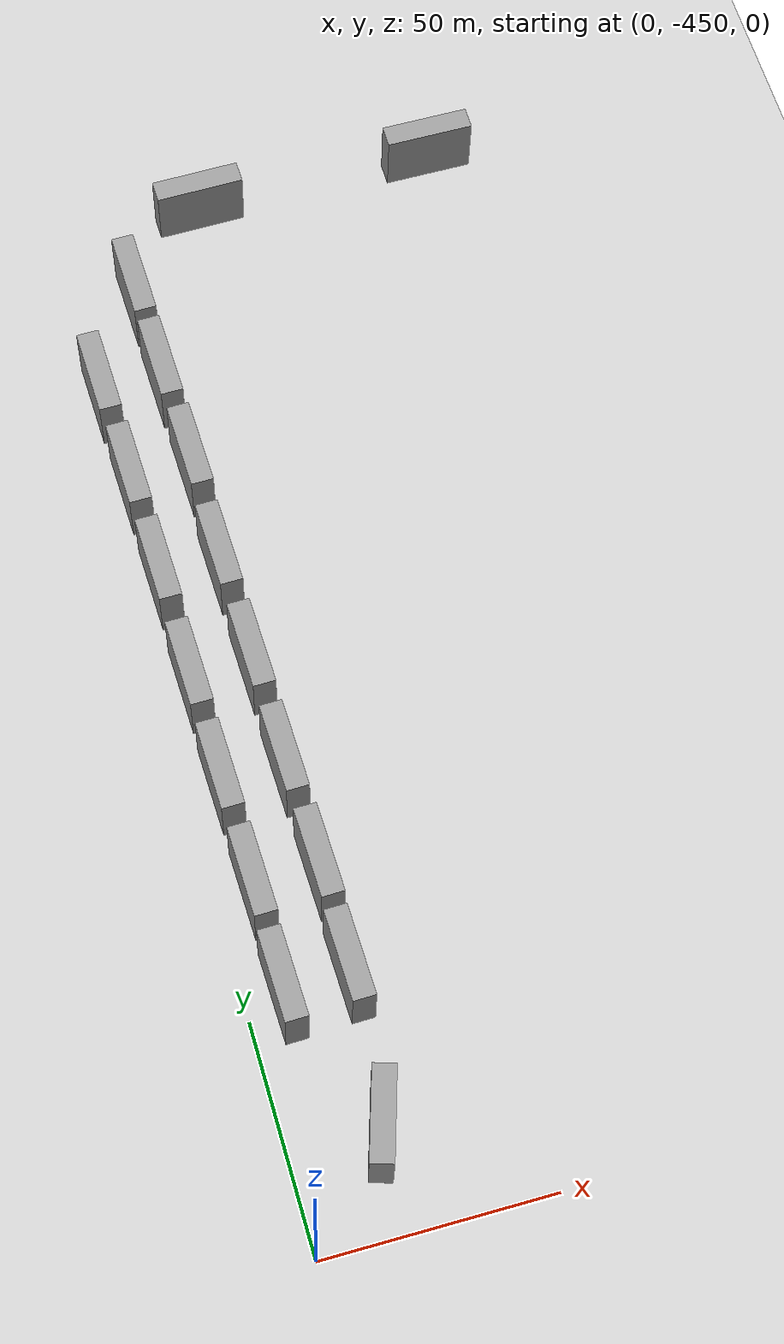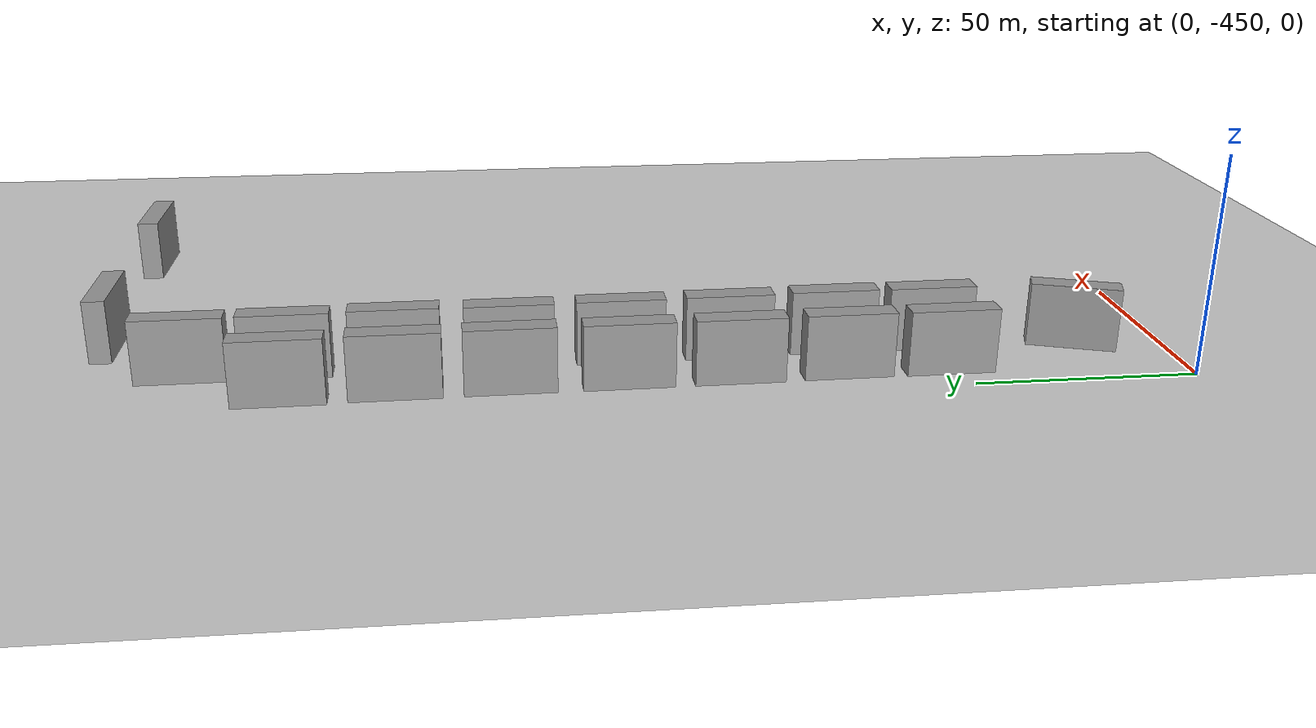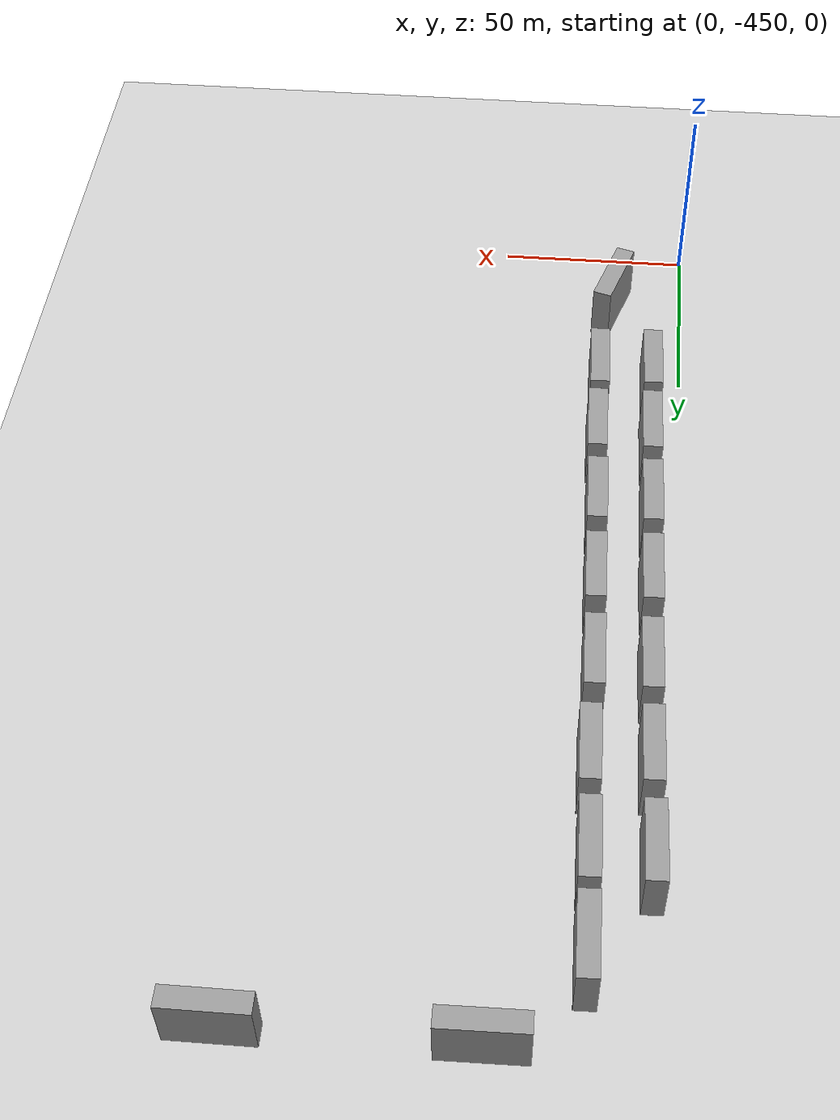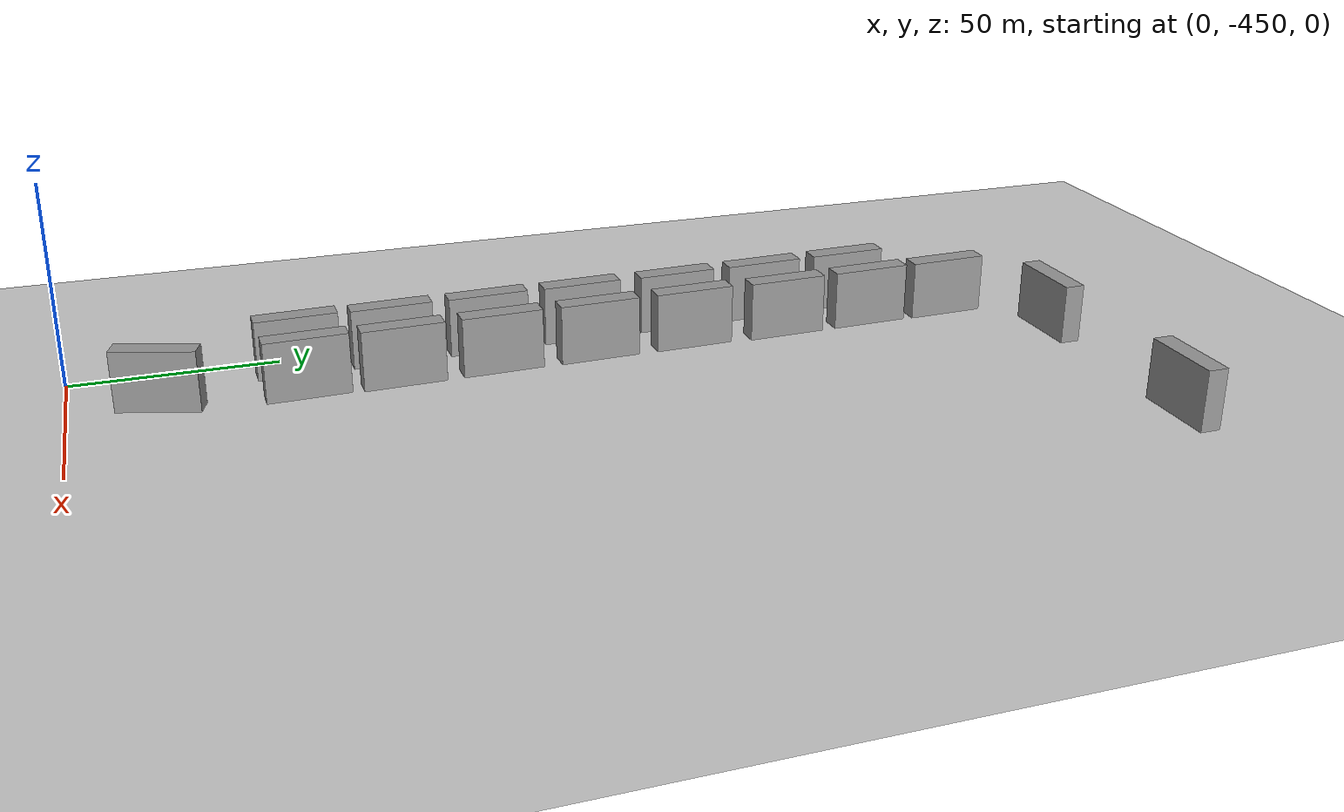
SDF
<sdf version="1.6">
 <world name="darpa_boxes">
  <model name="ground_plane">
   <static>1</static>
   <link name="link">
    <collision name="collision">
     <geometry><plane><normal>0 0 1</normal><size>2000 2000</size></plane></geometry>
     <surface>
      <contact><collide_bitmask>65535</collide_bitmask></contact>
      <friction><ode><mu>100</mu><mu2>50</mu2></ode></friction>
     </surface>
    </collision>
    <visual name="visual">
     <cast_shadows>0</cast_shadows>
     <geometry><plane><normal>0 0 1</normal><size>2000 2000</size></plane></geometry>
     <material>
      <script><uri>file://media/materials/scripts/gazebo.material</uri><name>Gazebo/Grey</name></script>
     </material>
    </visual>
   </link>
  </model>
  <model name="long_box_clone_clone_6">
   <link name="link">
    <inertial>
     <mass>1</mass>
     <inertia>
      <ixx>0.166667</ixx>
      <ixy>0</ixy>
      <ixz>0</ixz>
      <iyy>0.166667</iyy>
      <iyz>0</iyz>
      <izz>0.166667</izz>
     </inertia>
     <pose>0 0 7.5 0 -0 0</pose>
    </inertial>
    <visual name="visual">
     <geometry><box><size>5 20 15</size></box></geometry>
     <material>
      <script><name>Gazebo/Grey</name><uri>file://media/materials/scripts/gazebo.material</uri></script>
      <shader type="vertex"><normal_map>__default__</normal_map></shader>
      <ambient>0.3 0.3 0.3 1</ambient>
      <diffuse>0.7 0.7 0.7 1</diffuse>
      <specular>0.01 0.01 0.01 1</specular>
      <emissive>0 0 0 1</emissive>
     </material>
     <pose>0 0 7.5 0 -0 0</pose>
    </visual>
    <collision name="collision">
     <pose>0 0 7.5 0 -0 0</pose>
     <geometry><box><size>5 20 15</size></box></geometry>
     <surface>
      <friction>
       <ode><mu>1</mu><mu2>1</mu2><fdir1>0 0 0</fdir1><slip1>0</slip1><slip2>0</slip2></ode>
       <torsional>
        <coefficient>1</coefficient>
        <patch_radius>0</patch_radius>
        <surface_radius>0</surface_radius>
        <use_patch_radius>1</use_patch_radius>
        <ode><slip>0</slip></ode>
       </torsional>
      </friction>
      <bounce><restitution_coefficient>0</restitution_coefficient><threshold>1e+06</threshold></bounce>
      <contact>
       <collide_without_contact>0</collide_without_contact>
       <collide_without_contact_bitmask>1</collide_without_contact_bitmask>
       <collide_bitmask>1</collide_bitmask>
       <ode>
        <soft_cfm>0</soft_cfm>
        <soft_erp>0.2</soft_erp>
        <kp>1e+13</kp>
        <kd>1</kd>
        <max_vel>0.01</max_vel>
        <min_depth>0</min_depth>
       </ode>
       <bullet>
        <split_impulse>1</split_impulse>
        <split_impulse_penetration_threshold>-0.01</split_impulse_penetration_threshold>
        <soft_cfm>0</soft_cfm>
        <soft_erp>0.2</soft_erp>
        <kp>1e+13</kp>
        <kd>1</kd>
       </bullet>
      </contact>
     </surface>
    </collision>
   </link>
   <static>1</static>
   <pose>5.67981 -250.633 -0.049551 0.005047 -0.000114 0.022472</pose>
  </model>
  <model name="long_box_clone_clone_7">
   <link name="link">
    <inertial>
     <mass>1</mass>
     <inertia>
      <ixx>0.166667</ixx>
      <ixy>0</ixy>
      <ixz>0</ixz>
      <iyy>0.166667</iyy>
      <iyz>0</iyz>
      <izz>0.166667</izz>
     </inertia>
     <pose>0 0 7.5 0 -0 0</pose>
    </inertial>
    <visual name="visual">
     <geometry><box><size>5 20 15</size></box></geometry>
     <material>
      <script><name>Gazebo/Grey</name><uri>file://media/materials/scripts/gazebo.material</uri></script>
      <shader type="vertex"><normal_map>__default__</normal_map></shader>
      <ambient>0.3 0.3 0.3 1</ambient>
      <diffuse>0.7 0.7 0.7 1</diffuse>
      <specular>0.01 0.01 0.01 1</specular>
      <emissive>0 0 0 1</emissive>
     </material>
     <pose>0 0 7.5 0 -0 0</pose>
    </visual>
    <collision name="collision">
     <pose>0 0 7.5 0 -0 0</pose>
     <geometry><box><size>5 20 15</size></box></geometry>
     <surface>
      <friction>
       <ode><mu>1</mu><mu2>1</mu2><fdir1>0 0 0</fdir1><slip1>0</slip1><slip2>0</slip2></ode>
       <torsional>
        <coefficient>1</coefficient>
        <patch_radius>0</patch_radius>
        <surface_radius>0</surface_radius>
        <use_patch_radius>1</use_patch_radius>
        <ode><slip>0</slip></ode>
       </torsional>
      </friction>
      <bounce><restitution_coefficient>0</restitution_coefficient><threshold>1e+06</threshold></bounce>
      <contact>
       <collide_without_contact>0</collide_without_contact>
       <collide_without_contact_bitmask>1</collide_without_contact_bitmask>
       <collide_bitmask>1</collide_bitmask>
       <ode>
        <soft_cfm>0</soft_cfm>
        <soft_erp>0.2</soft_erp>
        <kp>1e+13</kp>
        <kd>1</kd>
        <max_vel>0.01</max_vel>
        <min_depth>0</min_depth>
       </ode>
       <bullet>
        <split_impulse>1</split_impulse>
        <split_impulse_penetration_threshold>-0.01</split_impulse_penetration_threshold>
        <soft_cfm>0</soft_cfm>
        <soft_erp>0.2</soft_erp>
        <kp>1e+13</kp>
        <kd>1</kd>
       </bullet>
      </contact>
     </surface>
    </collision>
   </link>
   <static>1</static>
   <pose>6.45947 -274.93 -0.049551 0.005047 -0.000114 0.022472</pose>
  </model>
  <model name="long_box_clone_clone_8">
   <link name="link">
    <inertial>
     <mass>1</mass>
     <inertia>
      <ixx>0.166667</ixx>
      <ixy>0</ixy>
      <ixz>0</ixz>
      <iyy>0.166667</iyy>
      <iyz>0</iyz>
      <izz>0.166667</izz>
     </inertia>
     <pose>0 0 7.5 0 -0 0</pose>
    </inertial>
    <visual name="visual">
     <geometry><box><size>5 20 15</size></box></geometry>
     <material>
      <script><name>Gazebo/Grey</name><uri>file://media/materials/scripts/gazebo.material</uri></script>
      <shader type="vertex"><normal_map>__default__</normal_map></shader>
      <ambient>0.3 0.3 0.3 1</ambient>
      <diffuse>0.7 0.7 0.7 1</diffuse>
      <specular>0.01 0.01 0.01 1</specular>
      <emissive>0 0 0 1</emissive>
     </material>
     <pose>0 0 7.5 0 -0 0</pose>
    </visual>
    <collision name="collision">
     <pose>0 0 7.5 0 -0 0</pose>
     <geometry><box><size>5 20 15</size></box></geometry>
     <surface>
      <friction>
       <ode><mu>1</mu><mu2>1</mu2><fdir1>0 0 0</fdir1><slip1>0</slip1><slip2>0</slip2></ode>
       <torsional>
        <coefficient>1</coefficient>
        <patch_radius>0</patch_radius>
        <surface_radius>0</surface_radius>
        <use_patch_radius>1</use_patch_radius>
        <ode><slip>0</slip></ode>
       </torsional>
      </friction>
      <bounce><restitution_coefficient>0</restitution_coefficient><threshold>1e+06</threshold></bounce>
      <contact>
       <collide_without_contact>0</collide_without_contact>
       <collide_without_contact_bitmask>1</collide_without_contact_bitmask>
       <collide_bitmask>1</collide_bitmask>
       <ode>
        <soft_cfm>0</soft_cfm>
        <soft_erp>0.2</soft_erp>
        <kp>1e+13</kp>
        <kd>1</kd>
        <max_vel>0.01</max_vel>
        <min_depth>0</min_depth>
       </ode>
       <bullet>
        <split_impulse>1</split_impulse>
        <split_impulse_penetration_threshold>-0.01</split_impulse_penetration_threshold>
        <soft_cfm>0</soft_cfm>
        <soft_erp>0.2</soft_erp>
        <kp>1e+13</kp>
        <kd>1</kd>
       </bullet>
      </contact>
     </surface>
    </collision>
   </link>
   <static>1</static>
   <pose>6.96106 -299.323 -0.049551 0.005047 -0.000114 0.022472</pose>
  </model>
  <model name="long_box_clone_clone_9">
   <link name="link">
    <inertial>
     <mass>1</mass>
     <inertia>
      <ixx>0.166667</ixx>
      <ixy>0</ixy>
      <ixz>0</ixz>
      <iyy>0.166667</iyy>
      <iyz>0</iyz>
      <izz>0.166667</izz>
     </inertia>
     <pose>0 0 7.5 0 -0 0</pose>
    </inertial>
    <visual name="visual">
     <geometry><box><size>5 20 15</size></box></geometry>
     <material>
      <script><name>Gazebo/Grey</name><uri>file://media/materials/scripts/gazebo.material</uri></script>
      <shader type="vertex"><normal_map>__default__</normal_map></shader>
      <ambient>0.3 0.3 0.3 1</ambient>
      <diffuse>0.7 0.7 0.7 1</diffuse>
      <specular>0.01 0.01 0.01 1</specular>
      <emissive>0 0 0 1</emissive>
     </material>
     <pose>0 0 7.5 0 -0 0</pose>
    </visual>
    <collision name="collision">
     <pose>0 0 7.5 0 -0 0</pose>
     <geometry><box><size>5 20 15</size></box></geometry>
     <surface>
      <friction>
       <ode><mu>1</mu><mu2>1</mu2><fdir1>0 0 0</fdir1><slip1>0</slip1><slip2>0</slip2></ode>
       <torsional>
        <coefficient>1</coefficient>
        <patch_radius>0</patch_radius>
        <surface_radius>0</surface_radius>
        <use_patch_radius>1</use_patch_radius>
        <ode><slip>0</slip></ode>
       </torsional>
      </friction>
      <bounce><restitution_coefficient>0</restitution_coefficient><threshold>1e+06</threshold></bounce>
      <contact>
       <collide_without_contact>0</collide_without_contact>
       <collide_without_contact_bitmask>1</collide_without_contact_bitmask>
       <collide_bitmask>1</collide_bitmask>
       <ode>
        <soft_cfm>0</soft_cfm>
        <soft_erp>0.2</soft_erp>
        <kp>1e+13</kp>
        <kd>1</kd>
        <max_vel>0.01</max_vel>
        <min_depth>0</min_depth>
       </ode>
       <bullet>
        <split_impulse>1</split_impulse>
        <split_impulse_penetration_threshold>-0.01</split_impulse_penetration_threshold>
        <soft_cfm>0</soft_cfm>
        <soft_erp>0.2</soft_erp>
        <kp>1e+13</kp>
        <kd>1</kd>
       </bullet>
      </contact>
     </surface>
    </collision>
   </link>
   <static>1</static>
   <pose>7.18976 -324.823 -0.049551 0.005047 -0.000114 0.022472</pose>
  </model>
  <model name="long_box_clone_clone_10">
   <link name="link">
    <inertial>
     <mass>1</mass>
     <inertia>
      <ixx>0.166667</ixx>
      <ixy>0</ixy>
      <ixz>0</ixz>
      <iyy>0.166667</iyy>
      <iyz>0</iyz>
      <izz>0.166667</izz>
     </inertia>
     <pose>0 0 7.5 0 -0 0</pose>
    </inertial>
    <visual name="visual">
     <geometry><box><size>5 20 15</size></box></geometry>
     <material>
      <script><name>Gazebo/Grey</name><uri>file://media/materials/scripts/gazebo.material</uri></script>
      <shader type="vertex"><normal_map>__default__</normal_map></shader>
      <ambient>0.3 0.3 0.3 1</ambient>
      <diffuse>0.7 0.7 0.7 1</diffuse>
      <specular>0.01 0.01 0.01 1</specular>
      <emissive>0 0 0 1</emissive>
     </material>
     <pose>0 0 7.5 0 -0 0</pose>
    </visual>
    <collision name="collision">
     <pose>0 0 7.5 0 -0 0</pose>
     <geometry><box><size>5 20 15</size></box></geometry>
     <surface>
      <friction>
       <ode><mu>1</mu><mu2>1</mu2><fdir1>0 0 0</fdir1><slip1>0</slip1><slip2>0</slip2></ode>
       <torsional>
        <coefficient>1</coefficient>
        <patch_radius>0</patch_radius>
        <surface_radius>0</surface_radius>
        <use_patch_radius>1</use_patch_radius>
        <ode><slip>0</slip></ode>
       </torsional>
      </friction>
      <bounce><restitution_coefficient>0</restitution_coefficient><threshold>1e+06</threshold></bounce>
      <contact>
       <collide_without_contact>0</collide_without_contact>
       <collide_without_contact_bitmask>1</collide_without_contact_bitmask>
       <collide_bitmask>1</collide_bitmask>
       <ode>
        <soft_cfm>0</soft_cfm>
        <soft_erp>0.2</soft_erp>
        <kp>1e+13</kp>
        <kd>1</kd>
        <max_vel>0.01</max_vel>
        <min_depth>0</min_depth>
       </ode>
       <bullet>
        <split_impulse>1</split_impulse>
        <split_impulse_penetration_threshold>-0.01</split_impulse_penetration_threshold>
        <soft_cfm>0</soft_cfm>
        <soft_erp>0.2</soft_erp>
        <kp>1e+13</kp>
        <kd>1</kd>
       </bullet>
      </contact>
     </surface>
    </collision>
   </link>
   <static>1</static>
   <pose>7.48707 -349.113 -0.049551 0.005047 -0.000114 0.022472</pose>
  </model>
  <model name="long_box_clone_clone_11">
   <link name="link">
    <inertial>
     <mass>1</mass>
     <inertia>
      <ixx>0.166667</ixx>
      <ixy>0</ixy>
      <ixz>0</ixz>
      <iyy>0.166667</iyy>
      <iyz>0</iyz>
      <izz>0.166667</izz>
     </inertia>
     <pose>0 0 7.5 0 -0 0</pose>
    </inertial>
    <visual name="visual">
     <geometry><box><size>5 20 15</size></box></geometry>
     <material>
      <script><name>Gazebo/Grey</name><uri>file://media/materials/scripts/gazebo.material</uri></script>
      <shader type="vertex"><normal_map>__default__</normal_map></shader>
      <ambient>0.3 0.3 0.3 1</ambient>
      <diffuse>0.7 0.7 0.7 1</diffuse>
      <specular>0.01 0.01 0.01 1</specular>
      <emissive>0 0 0 1</emissive>
     </material>
     <pose>0 0 7.5 0 -0 0</pose>
    </visual>
    <collision name="collision">
     <pose>0 0 7.5 0 -0 0</pose>
     <geometry><box><size>5 20 15</size></box></geometry>
     <surface>
      <friction>
       <ode><mu>1</mu><mu2>1</mu2><fdir1>0 0 0</fdir1><slip1>0</slip1><slip2>0</slip2></ode>
       <torsional>
        <coefficient>1</coefficient>
        <patch_radius>0</patch_radius>
        <surface_radius>0</surface_radius>
        <use_patch_radius>1</use_patch_radius>
        <ode><slip>0</slip></ode>
       </torsional>
      </friction>
      <bounce><restitution_coefficient>0</restitution_coefficient><threshold>1e+06</threshold></bounce>
      <contact>
       <collide_without_contact>0</collide_without_contact>
       <collide_without_contact_bitmask>1</collide_without_contact_bitmask>
       <collide_bitmask>1</collide_bitmask>
       <ode>
        <soft_cfm>0</soft_cfm>
        <soft_erp>0.2</soft_erp>
        <kp>1e+13</kp>
        <kd>1</kd>
        <max_vel>0.01</max_vel>
        <min_depth>0</min_depth>
       </ode>
       <bullet>
        <split_impulse>1</split_impulse>
        <split_impulse_penetration_threshold>-0.01</split_impulse_penetration_threshold>
        <soft_cfm>0</soft_cfm>
        <soft_erp>0.2</soft_erp>
        <kp>1e+13</kp>
        <kd>1</kd>
       </bullet>
      </contact>
     </surface>
    </collision>
   </link>
   <static>1</static>
   <pose>7.93072 -373.289 -0.049551 0.005047 -0.000114 0.022472</pose>
  </model>
  <model name="long_box_clone_clone_12">
   <link name="link">
    <inertial>
     <mass>1</mass>
     <inertia>
      <ixx>0.166667</ixx>
      <ixy>0</ixy>
      <ixz>0</ixz>
      <iyy>0.166667</iyy>
      <iyz>0</iyz>
      <izz>0.166667</izz>
     </inertia>
     <pose>0 0 7.5 0 -0 0</pose>
    </inertial>
    <visual name="visual">
     <geometry><box><size>5 20 15</size></box></geometry>
     <material>
      <script><name>Gazebo/Grey</name><uri>file://media/materials/scripts/gazebo.material</uri></script>
      <shader type="vertex"><normal_map>__default__</normal_map></shader>
      <ambient>0.3 0.3 0.3 1</ambient>
      <diffuse>0.7 0.7 0.7 1</diffuse>
      <specular>0.01 0.01 0.01 1</specular>
      <emissive>0 0 0 1</emissive>
     </material>
     <pose>0 0 7.5 0 -0 0</pose>
    </visual>
    <collision name="collision">
     <pose>0 0 7.5 0 -0 0</pose>
     <geometry><box><size>5 20 15</size></box></geometry>
     <surface>
      <friction>
       <ode><mu>1</mu><mu2>1</mu2><fdir1>0 0 0</fdir1><slip1>0</slip1><slip2>0</slip2></ode>
       <torsional>
        <coefficient>1</coefficient>
        <patch_radius>0</patch_radius>
        <surface_radius>0</surface_radius>
        <use_patch_radius>1</use_patch_radius>
        <ode><slip>0</slip></ode>
       </torsional>
      </friction>
      <bounce><restitution_coefficient>0</restitution_coefficient><threshold>1e+06</threshold></bounce>
      <contact>
       <collide_without_contact>0</collide_without_contact>
       <collide_without_contact_bitmask>1</collide_without_contact_bitmask>
       <collide_bitmask>1</collide_bitmask>
       <ode>
        <soft_cfm>0</soft_cfm>
        <soft_erp>0.2</soft_erp>
        <kp>1e+13</kp>
        <kd>1</kd>
        <max_vel>0.01</max_vel>
        <min_depth>0</min_depth>
       </ode>
       <bullet>
        <split_impulse>1</split_impulse>
        <split_impulse_penetration_threshold>-0.01</split_impulse_penetration_threshold>
        <soft_cfm>0</soft_cfm>
        <soft_erp>0.2</soft_erp>
        <kp>1e+13</kp>
        <kd>1</kd>
       </bullet>
      </contact>
     </surface>
    </collision>
   </link>
   <static>1</static>
   <pose>8.01915 -396.284 -0.049551 0.005047 -0.000114 0.022472</pose>
  </model>
  <model name="long_box_clone_clone_13">
   <link name="link">
    <inertial>
     <mass>1</mass>
     <inertia>
      <ixx>0.166667</ixx>
      <ixy>0</ixy>
      <ixz>0</ixz>
      <iyy>0.166667</iyy>
      <iyz>0</iyz>
      <izz>0.166667</izz>
     </inertia>
     <pose>0 0 7.5 0 -0 0</pose>
    </inertial>
    <visual name="visual">
     <geometry><box><size>5 20 15</size></box></geometry>
     <material>
      <script><name>Gazebo/Grey</name><uri>file://media/materials/scripts/gazebo.material</uri></script>
      <shader type="vertex"><normal_map>__default__</normal_map></shader>
      <ambient>0.3 0.3 0.3 1</ambient>
      <diffuse>0.7 0.7 0.7 1</diffuse>
      <specular>0.01 0.01 0.01 1</specular>
      <emissive>0 0 0 1</emissive>
     </material>
     <pose>0 0 7.5 0 -0 0</pose>
    </visual>
    <collision name="collision">
     <pose>0 0 7.5 0 -0 0</pose>
     <geometry><box><size>5 20 15</size></box></geometry>
     <surface>
      <friction>
       <ode><mu>1</mu><mu2>1</mu2><fdir1>0 0 0</fdir1><slip1>0</slip1><slip2>0</slip2></ode>
       <torsional>
        <coefficient>1</coefficient>
        <patch_radius>0</patch_radius>
        <surface_radius>0</surface_radius>
        <use_patch_radius>1</use_patch_radius>
        <ode><slip>0</slip></ode>
       </torsional>
      </friction>
      <bounce><restitution_coefficient>0</restitution_coefficient><threshold>1e+06</threshold></bounce>
      <contact>
       <collide_without_contact>0</collide_without_contact>
       <collide_without_contact_bitmask>1</collide_without_contact_bitmask>
       <collide_bitmask>1</collide_bitmask>
       <ode>
        <soft_cfm>0</soft_cfm>
        <soft_erp>0.2</soft_erp>
        <kp>1e+13</kp>
        <kd>1</kd>
        <max_vel>0.01</max_vel>
        <min_depth>0</min_depth>
       </ode>
       <bullet>
        <split_impulse>1</split_impulse>
        <split_impulse_penetration_threshold>-0.01</split_impulse_penetration_threshold>
        <soft_cfm>0</soft_cfm>
        <soft_erp>0.2</soft_erp>
        <kp>1e+13</kp>
        <kd>1</kd>
       </bullet>
      </contact>
     </surface>
    </collision>
   </link>
   <static>1</static>
   <pose>22.0679 -395.71 -0.049551 0.005047 -0.000114 0.022472</pose>
  </model>
  <model name="long_box_clone_clone_14">
   <link name="link">
    <inertial>
     <mass>1</mass>
     <inertia>
      <ixx>0.166667</ixx>
      <ixy>0</ixy>
      <ixz>0</ixz>
      <iyy>0.166667</iyy>
      <iyz>0</iyz>
      <izz>0.166667</izz>
     </inertia>
     <pose>0 0 7.5 0 -0 0</pose>
    </inertial>
    <visual name="visual">
     <geometry><box><size>5 20 15</size></box></geometry>
     <material>
      <script><name>Gazebo/Grey</name><uri>file://media/materials/scripts/gazebo.material</uri></script>
      <shader type="vertex"><normal_map>__default__</normal_map></shader>
      <ambient>0.3 0.3 0.3 1</ambient>
      <diffuse>0.7 0.7 0.7 1</diffuse>
      <specular>0.01 0.01 0.01 1</specular>
      <emissive>0 0 0 1</emissive>
     </material>
     <pose>0 0 7.5 0 -0 0</pose>
    </visual>
    <collision name="collision">
     <pose>0 0 7.5 0 -0 0</pose>
     <geometry><box><size>5 20 15</size></box></geometry>
     <surface>
      <friction>
       <ode><mu>1</mu><mu2>1</mu2><fdir1>0 0 0</fdir1><slip1>0</slip1><slip2>0</slip2></ode>
       <torsional>
        <coefficient>1</coefficient>
        <patch_radius>0</patch_radius>
        <surface_radius>0</surface_radius>
        <use_patch_radius>1</use_patch_radius>
        <ode><slip>0</slip></ode>
       </torsional>
      </friction>
      <bounce><restitution_coefficient>0</restitution_coefficient><threshold>1e+06</threshold></bounce>
      <contact>
       <collide_without_contact>0</collide_without_contact>
       <collide_without_contact_bitmask>1</collide_without_contact_bitmask>
       <collide_bitmask>1</collide_bitmask>
       <ode>
        <soft_cfm>0</soft_cfm>
        <soft_erp>0.2</soft_erp>
        <kp>1e+13</kp>
        <kd>1</kd>
        <max_vel>0.01</max_vel>
        <min_depth>0</min_depth>
       </ode>
       <bullet>
        <split_impulse>1</split_impulse>
        <split_impulse_penetration_threshold>-0.01</split_impulse_penetration_threshold>
        <soft_cfm>0</soft_cfm>
        <soft_erp>0.2</soft_erp>
        <kp>1e+13</kp>
        <kd>1</kd>
       </bullet>
      </contact>
     </surface>
    </collision>
   </link>
   <static>1</static>
   <pose>22.0165 -373.029 -0.049551 0.005047 -0.000114 0.022472</pose>
  </model>
  <model name="long_box_clone_clone_15">
   <link name="link">
    <inertial>
     <mass>1</mass>
     <inertia>
      <ixx>0.166667</ixx>
      <ixy>0</ixy>
      <ixz>0</ixz>
      <iyy>0.166667</iyy>
      <iyz>0</iyz>
      <izz>0.166667</izz>
     </inertia>
     <pose>0 0 7.5 0 -0 0</pose>
    </inertial>
    <visual name="visual">
     <geometry><box><size>5 20 15</size></box></geometry>
     <material>
      <script><name>Gazebo/Grey</name><uri>file://media/materials/scripts/gazebo.material</uri></script>
      <shader type="vertex"><normal_map>__default__</normal_map></shader>
      <ambient>0.3 0.3 0.3 1</ambient>
      <diffuse>0.7 0.7 0.7 1</diffuse>
      <specular>0.01 0.01 0.01 1</specular>
      <emissive>0 0 0 1</emissive>
     </material>
     <pose>0 0 7.5 0 -0 0</pose>
    </visual>
    <collision name="collision">
     <pose>0 0 7.5 0 -0 0</pose>
     <geometry><box><size>5 20 15</size></box></geometry>
     <surface>
      <friction>
       <ode><mu>1</mu><mu2>1</mu2><fdir1>0 0 0</fdir1><slip1>0</slip1><slip2>0</slip2></ode>
       <torsional>
        <coefficient>1</coefficient>
        <patch_radius>0</patch_radius>
        <surface_radius>0</surface_radius>
        <use_patch_radius>1</use_patch_radius>
        <ode><slip>0</slip></ode>
       </torsional>
      </friction>
      <bounce><restitution_coefficient>0</restitution_coefficient><threshold>1e+06</threshold></bounce>
      <contact>
       <collide_without_contact>0</collide_without_contact>
       <collide_without_contact_bitmask>1</collide_without_contact_bitmask>
       <collide_bitmask>1</collide_bitmask>
       <ode>
        <soft_cfm>0</soft_cfm>
        <soft_erp>0.2</soft_erp>
        <kp>1e+13</kp>
        <kd>1</kd>
        <max_vel>0.01</max_vel>
        <min_depth>0</min_depth>
       </ode>
       <bullet>
        <split_impulse>1</split_impulse>
        <split_impulse_penetration_threshold>-0.01</split_impulse_penetration_threshold>
        <soft_cfm>0</soft_cfm>
        <soft_erp>0.2</soft_erp>
        <kp>1e+13</kp>
        <kd>1</kd>
       </bullet>
      </contact>
     </surface>
    </collision>
   </link>
   <static>1</static>
   <pose>21.2901 -348.884 -0.049551 0.005047 -0.000114 0.022472</pose>
  </model>
  <model name="long_box_clone_clone_16">
   <link name="link">
    <inertial>
     <mass>1</mass>
     <inertia>
      <ixx>0.166667</ixx>
      <ixy>0</ixy>
      <ixz>0</ixz>
      <iyy>0.166667</iyy>
      <iyz>0</iyz>
      <izz>0.166667</izz>
     </inertia>
     <pose>0 0 7.5 0 -0 0</pose>
    </inertial>
    <visual name="visual">
     <geometry><box><size>5 20 15</size></box></geometry>
     <material>
      <script><name>Gazebo/Grey</name><uri>file://media/materials/scripts/gazebo.material</uri></script>
      <shader type="vertex"><normal_map>__default__</normal_map></shader>
      <ambient>0.3 0.3 0.3 1</ambient>
      <diffuse>0.7 0.7 0.7 1</diffuse>
      <specular>0.01 0.01 0.01 1</specular>
      <emissive>0 0 0 1</emissive>
     </material>
     <pose>0 0 7.5 0 -0 0</pose>
    </visual>
    <collision name="collision">
     <pose>0 0 7.5 0 -0 0</pose>
     <geometry><box><size>5 20 15</size></box></geometry>
     <surface>
      <friction>
       <ode><mu>1</mu><mu2>1</mu2><fdir1>0 0 0</fdir1><slip1>0</slip1><slip2>0</slip2></ode>
       <torsional>
        <coefficient>1</coefficient>
        <patch_radius>0</patch_radius>
        <surface_radius>0</surface_radius>
        <use_patch_radius>1</use_patch_radius>
        <ode><slip>0</slip></ode>
       </torsional>
      </friction>
      <bounce><restitution_coefficient>0</restitution_coefficient><threshold>1e+06</threshold></bounce>
      <contact>
       <collide_without_contact>0</collide_without_contact>
       <collide_without_contact_bitmask>1</collide_without_contact_bitmask>
       <collide_bitmask>1</collide_bitmask>
       <ode>
        <soft_cfm>0</soft_cfm>
        <soft_erp>0.2</soft_erp>
        <kp>1e+13</kp>
        <kd>1</kd>
        <max_vel>0.01</max_vel>
        <min_depth>0</min_depth>
       </ode>
       <bullet>
        <split_impulse>1</split_impulse>
        <split_impulse_penetration_threshold>-0.01</split_impulse_penetration_threshold>
        <soft_cfm>0</soft_cfm>
        <soft_erp>0.2</soft_erp>
        <kp>1e+13</kp>
        <kd>1</kd>
       </bullet>
      </contact>
     </surface>
    </collision>
   </link>
   <static>1</static>
   <pose>20.8426 -324.277 -0.049551 0.005047 -0.000114 0.022472</pose>
  </model>
  <model name="long_box_clone_clone_17">
   <link name="link">
    <inertial>
     <mass>1</mass>
     <inertia>
      <ixx>0.166667</ixx>
      <ixy>0</ixy>
      <ixz>0</ixz>
      <iyy>0.166667</iyy>
      <iyz>0</iyz>
      <izz>0.166667</izz>
     </inertia>
     <pose>0 0 7.5 0 -0 0</pose>
    </inertial>
    <visual name="visual">
     <geometry><box><size>5 20 15</size></box></geometry>
     <material>
      <script><name>Gazebo/Grey</name><uri>file://media/materials/scripts/gazebo.material</uri></script>
      <shader type="vertex"><normal_map>__default__</normal_map></shader>
      <ambient>0.3 0.3 0.3 1</ambient>
      <diffuse>0.7 0.7 0.7 1</diffuse>
      <specular>0.01 0.01 0.01 1</specular>
      <emissive>0 0 0 1</emissive>
     </material>
     <pose>0 0 7.5 0 -0 0</pose>
    </visual>
    <collision name="collision">
     <pose>0 0 7.5 0 -0 0</pose>
     <geometry><box><size>5 20 15</size></box></geometry>
     <surface>
      <friction>
       <ode><mu>1</mu><mu2>1</mu2><fdir1>0 0 0</fdir1><slip1>0</slip1><slip2>0</slip2></ode>
       <torsional>
        <coefficient>1</coefficient>
        <patch_radius>0</patch_radius>
        <surface_radius>0</surface_radius>
        <use_patch_radius>1</use_patch_radius>
        <ode><slip>0</slip></ode>
       </torsional>
      </friction>
      <bounce><restitution_coefficient>0</restitution_coefficient><threshold>1e+06</threshold></bounce>
      <contact>
       <collide_without_contact>0</collide_without_contact>
       <collide_without_contact_bitmask>1</collide_without_contact_bitmask>
       <collide_bitmask>1</collide_bitmask>
       <ode>
        <soft_cfm>0</soft_cfm>
        <soft_erp>0.2</soft_erp>
        <kp>1e+13</kp>
        <kd>1</kd>
        <max_vel>0.01</max_vel>
        <min_depth>0</min_depth>
       </ode>
       <bullet>
        <split_impulse>1</split_impulse>
        <split_impulse_penetration_threshold>-0.01</split_impulse_penetration_threshold>
        <soft_cfm>0</soft_cfm>
        <soft_erp>0.2</soft_erp>
        <kp>1e+13</kp>
        <kd>1</kd>
       </bullet>
      </contact>
     </surface>
    </collision>
   </link>
   <static>1</static>
   <pose>20.3309 -299.386 -0.049551 0.005047 -0.000114 0.022472</pose>
  </model>
  <model name="long_box_clone_clone_18">
   <link name="link">
    <inertial>
     <mass>1</mass>
     <inertia>
      <ixx>0.166667</ixx>
      <ixy>0</ixy>
      <ixz>0</ixz>
      <iyy>0.166667</iyy>
      <iyz>0</iyz>
      <izz>0.166667</izz>
     </inertia>
     <pose>0 0 7.5 0 -0 0</pose>
    </inertial>
    <visual name="visual">
     <geometry><box><size>5 20 15</size></box></geometry>
     <material>
      <script><name>Gazebo/Grey</name><uri>file://media/materials/scripts/gazebo.material</uri></script>
      <shader type="vertex"><normal_map>__default__</normal_map></shader>
      <ambient>0.3 0.3 0.3 1</ambient>
      <diffuse>0.7 0.7 0.7 1</diffuse>
      <specular>0.01 0.01 0.01 1</specular>
      <emissive>0 0 0 1</emissive>
     </material>
     <pose>0 0 7.5 0 -0 0</pose>
    </visual>
    <collision name="collision">
     <pose>0 0 7.5 0 -0 0</pose>
     <geometry><box><size>5 20 15</size></box></geometry>
     <surface>
      <friction>
       <ode><mu>1</mu><mu2>1</mu2><fdir1>0 0 0</fdir1><slip1>0</slip1><slip2>0</slip2></ode>
       <torsional>
        <coefficient>1</coefficient>
        <patch_radius>0</patch_radius>
        <surface_radius>0</surface_radius>
        <use_patch_radius>1</use_patch_radius>
        <ode><slip>0</slip></ode>
       </torsional>
      </friction>
      <bounce><restitution_coefficient>0</restitution_coefficient><threshold>1e+06</threshold></bounce>
      <contact>
       <collide_without_contact>0</collide_without_contact>
       <collide_without_contact_bitmask>1</collide_without_contact_bitmask>
       <collide_bitmask>1</collide_bitmask>
       <ode>
        <soft_cfm>0</soft_cfm>
        <soft_erp>0.2</soft_erp>
        <kp>1e+13</kp>
        <kd>1</kd>
        <max_vel>0.01</max_vel>
        <min_depth>0</min_depth>
       </ode>
       <bullet>
        <split_impulse>1</split_impulse>
        <split_impulse_penetration_threshold>-0.01</split_impulse_penetration_threshold>
        <soft_cfm>0</soft_cfm>
        <soft_erp>0.2</soft_erp>
        <kp>1e+13</kp>
        <kd>1</kd>
       </bullet>
      </contact>
     </surface>
    </collision>
   </link>
   <static>1</static>
   <pose>20.4301 -274.151 -0.049551 0.005047 -0.000114 0.022472</pose>
  </model>
  <model name="long_box_clone_clone_19">
   <link name="link">
    <inertial>
     <mass>1</mass>
     <inertia>
      <ixx>0.166667</ixx>
      <ixy>0</ixy>
      <ixz>0</ixz>
      <iyy>0.166667</iyy>
      <iyz>0</iyz>
      <izz>0.166667</izz>
     </inertia>
     <pose>0 0 7.5 0 -0 0</pose>
    </inertial>
    <visual name="visual">
     <geometry><box><size>5 20 15</size></box></geometry>
     <material>
      <script><name>Gazebo/Grey</name><uri>file://media/materials/scripts/gazebo.material</uri></script>
      <shader type="vertex"><normal_map>__default__</normal_map></shader>
      <ambient>0.3 0.3 0.3 1</ambient>
      <diffuse>0.7 0.7 0.7 1</diffuse>
      <specular>0.01 0.01 0.01 1</specular>
      <emissive>0 0 0 1</emissive>
     </material>
     <pose>0 0 7.5 0 -0 0</pose>
    </visual>
    <collision name="collision">
     <pose>0 0 7.5 0 -0 0</pose>
     <geometry><box><size>5 20 15</size></box></geometry>
     <surface>
      <friction>
       <ode><mu>1</mu><mu2>1</mu2><fdir1>0 0 0</fdir1><slip1>0</slip1><slip2>0</slip2></ode>
       <torsional>
        <coefficient>1</coefficient>
        <patch_radius>0</patch_radius>
        <surface_radius>0</surface_radius>
        <use_patch_radius>1</use_patch_radius>
        <ode><slip>0</slip></ode>
       </torsional>
      </friction>
      <bounce><restitution_coefficient>0</restitution_coefficient><threshold>1e+06</threshold></bounce>
      <contact>
       <collide_without_contact>0</collide_without_contact>
       <collide_without_contact_bitmask>1</collide_without_contact_bitmask>
       <collide_bitmask>1</collide_bitmask>
       <ode>
        <soft_cfm>0</soft_cfm>
        <soft_erp>0.2</soft_erp>
        <kp>1e+13</kp>
        <kd>1</kd>
        <max_vel>0.01</max_vel>
        <min_depth>0</min_depth>
       </ode>
       <bullet>
        <split_impulse>1</split_impulse>
        <split_impulse_penetration_threshold>-0.01</split_impulse_penetration_threshold>
        <soft_cfm>0</soft_cfm>
        <soft_erp>0.2</soft_erp>
        <kp>1e+13</kp>
        <kd>1</kd>
       </bullet>
      </contact>
     </surface>
    </collision>
   </link>
   <static>1</static>
   <pose>19.6822 -250.445 -0.049551 0.005047 -0.000114 0.022472</pose>
  </model>
  <model name="long_box_clone_clone_20">
   <link name="link">
    <inertial>
     <mass>1</mass>
     <inertia>
      <ixx>0.166667</ixx>
      <ixy>0</ixy>
      <ixz>0</ixz>
      <iyy>0.166667</iyy>
      <iyz>0</iyz>
      <izz>0.166667</izz>
     </inertia>
     <pose>0 0 7.5 0 -0 0</pose>
    </inertial>
    <visual name="visual">
     <geometry><box><size>5 20 15</size></box></geometry>
     <material>
      <script><name>Gazebo/Grey</name><uri>file://media/materials/scripts/gazebo.material</uri></script>
      <shader type="vertex"><normal_map>__default__</normal_map></shader>
      <ambient>0.3 0.3 0.3 1</ambient>
      <diffuse>0.7 0.7 0.7 1</diffuse>
      <specular>0.01 0.01 0.01 1</specular>
      <emissive>0 0 0 1</emissive>
     </material>
     <pose>0 0 7.5 0 -0 0</pose>
    </visual>
    <collision name="collision">
     <pose>0 0 7.5 0 -0 0</pose>
     <geometry><box><size>5 20 15</size></box></geometry>
     <surface>
      <friction>
       <ode><mu>1</mu><mu2>1</mu2><fdir1>0 0 0</fdir1><slip1>0</slip1><slip2>0</slip2></ode>
       <torsional>
        <coefficient>1</coefficient>
        <patch_radius>0</patch_radius>
        <surface_radius>0</surface_radius>
        <use_patch_radius>1</use_patch_radius>
        <ode><slip>0</slip></ode>
       </torsional>
      </friction>
      <bounce><restitution_coefficient>0</restitution_coefficient><threshold>1e+06</threshold></bounce>
      <contact>
       <collide_without_contact>0</collide_without_contact>
       <collide_without_contact_bitmask>1</collide_without_contact_bitmask>
       <collide_bitmask>1</collide_bitmask>
       <ode>
        <soft_cfm>0</soft_cfm>
        <soft_erp>0.2</soft_erp>
        <kp>1e+13</kp>
        <kd>1</kd>
        <max_vel>0.01</max_vel>
        <min_depth>0</min_depth>
       </ode>
       <bullet>
        <split_impulse>1</split_impulse>
        <split_impulse_penetration_threshold>-0.01</split_impulse_penetration_threshold>
        <soft_cfm>0</soft_cfm>
        <soft_erp>0.2</soft_erp>
        <kp>1e+13</kp>
        <kd>1</kd>
       </bullet>
      </contact>
     </surface>
    </collision>
   </link>
   <static>1</static>
   <pose>19.2326 -227.915 -0.049551 0.005047 -0.000114 0.022472</pose>
  </model>
  <model name="long_box_clone_clone_28_clone">
   <link name="link">
    <inertial>
     <mass>1</mass>
     <inertia>
      <ixx>0.166667</ixx>
      <ixy>0</ixy>
      <ixz>0</ixz>
      <iyy>0.166667</iyy>
      <iyz>0</iyz>
      <izz>0.166667</izz>
     </inertia>
     <pose>0 0 7.5 0 -0 0</pose>
    </inertial>
    <visual name="visual">
     <geometry><box><size>5 20 15</size></box></geometry>
     <material>
      <script><name>Gazebo/Grey</name><uri>file://media/materials/scripts/gazebo.material</uri></script>
      <shader type="vertex"><normal_map>__default__</normal_map></shader>
      <ambient>0.3 0.3 0.3 1</ambient>
      <diffuse>0.7 0.7 0.7 1</diffuse>
      <specular>0.01 0.01 0.01 1</specular>
      <emissive>0 0 0 1</emissive>
     </material>
     <pose>0 0 7.5 0 -0 0</pose>
    </visual>
    <collision name="collision">
     <pose>0 0 7.5 0 -0 0</pose>
     <geometry><box><size>5 20 15</size></box></geometry>
     <surface>
      <friction>
       <ode><mu>1</mu><mu2>1</mu2><fdir1>0 0 0</fdir1><slip1>0</slip1><slip2>0</slip2></ode>
       <torsional>
        <coefficient>1</coefficient>
        <patch_radius>0</patch_radius>
        <surface_radius>0</surface_radius>
        <use_patch_radius>1</use_patch_radius>
        <ode><slip>0</slip></ode>
       </torsional>
      </friction>
      <bounce><restitution_coefficient>0</restitution_coefficient><threshold>1e+06</threshold></bounce>
      <contact>
       <collide_without_contact>0</collide_without_contact>
       <collide_without_contact_bitmask>1</collide_without_contact_bitmask>
       <collide_bitmask>1</collide_bitmask>
       <ode>
        <soft_cfm>0</soft_cfm>
        <soft_erp>0.2</soft_erp>
        <kp>1e+13</kp>
        <kd>1</kd>
        <max_vel>0.01</max_vel>
        <min_depth>0</min_depth>
       </ode>
       <bullet>
        <split_impulse>1</split_impulse>
        <split_impulse_penetration_threshold>-0.01</split_impulse_penetration_threshold>
        <soft_cfm>0</soft_cfm>
        <soft_erp>0.2</soft_erp>
        <kp>1e+13</kp>
        <kd>1</kd>
       </bullet>
      </contact>
     </surface>
    </collision>
   </link>
   <static>1</static>
   <pose>19.3219 -428.984 -0.049551 0.004812 0.001527 -0.307324</pose>
  </model>
  <model name="long_box_clone_clone_29_clone_3_clone_clone_14_clone_clone_0_clone_0">
   <link name="link">
    <inertial>
     <mass>1</mass>
     <inertia>
      <ixx>0.166667</ixx>
      <ixy>0</ixy>
      <ixz>0</ixz>
      <iyy>0.166667</iyy>
      <iyz>0</iyz>
      <izz>0.166667</izz>
     </inertia>
     <pose>0 0 7.5 0 -0 0</pose>
    </inertial>
    <visual name="visual">
     <geometry><box><size>5 20 15</size></box></geometry>
     <material>
      <script><name>Gazebo/Grey</name><uri>file://media/materials/scripts/gazebo.material</uri></script>
      <shader type="vertex"><normal_map>__default__</normal_map></shader>
      <ambient>0.3 0.3 0.3 1</ambient>
      <diffuse>0.7 0.7 0.7 1</diffuse>
      <specular>0.01 0.01 0.01 1</specular>
      <emissive>0 0 0 1</emissive>
     </material>
     <pose>0 0 7.5 0 -0 0</pose>
    </visual>
    <collision name="collision">
     <pose>0 0 7.5 0 -0 0</pose>
     <geometry><box><size>5 20 15</size></box></geometry>
     <surface>
      <friction>
       <ode><mu>1</mu><mu2>1</mu2><fdir1>0 0 0</fdir1><slip1>0</slip1><slip2>0</slip2></ode>
       <torsional>
        <coefficient>1</coefficient>
        <patch_radius>0</patch_radius>
        <surface_radius>0</surface_radius>
        <use_patch_radius>1</use_patch_radius>
        <ode><slip>0</slip></ode>
       </torsional>
      </friction>
      <bounce><restitution_coefficient>0</restitution_coefficient><threshold>1e+06</threshold></bounce>
      <contact>
       <collide_without_contact>0</collide_without_contact>
       <collide_without_contact_bitmask>1</collide_without_contact_bitmask>
       <collide_bitmask>1</collide_bitmask>
       <ode>
        <soft_cfm>0</soft_cfm>
        <soft_erp>0.2</soft_erp>
        <kp>1e+13</kp>
        <kd>1</kd>
        <max_vel>0.01</max_vel>
        <min_depth>0</min_depth>
       </ode>
       <bullet>
        <split_impulse>1</split_impulse>
        <split_impulse_penetration_threshold>-0.01</split_impulse_penetration_threshold>
        <soft_cfm>0</soft_cfm>
        <soft_erp>0.2</soft_erp>
        <kp>1e+13</kp>
        <kd>1</kd>
       </bullet>
      </contact>
     </surface>
    </collision>
   </link>
   <static>1</static>
   <pose>39.2384 -207.739 -0.049551 8.7e-05 0.005047 -1.55363</pose>
  </model>
  <model name="long_box_clone_clone_29_clone_3_clone_clone_14_clone_clone_0_clone_2">
   <link name="link">
    <inertial>
     <mass>1</mass>
     <inertia>
      <ixx>0.166667</ixx>
      <ixy>0</ixy>
      <ixz>0</ixz>
      <iyy>0.166667</iyy>
      <iyz>0</iyz>
      <izz>0.166667</izz>
     </inertia>
     <pose>0 0 7.5 0 -0 0</pose>
    </inertial>
    <visual name="visual">
     <geometry><box><size>5 20 15</size></box></geometry>
     <material>
      <script><name>Gazebo/Grey</name><uri>file://media/materials/scripts/gazebo.material</uri></script>
      <shader type="vertex"><normal_map>__default__</normal_map></shader>
      <ambient>0.3 0.3 0.3 1</ambient>
      <diffuse>0.7 0.7 0.7 1</diffuse>
      <specular>0.01 0.01 0.01 1</specular>
      <emissive>0 0 0 1</emissive>
     </material>
     <pose>0 0 7.5 0 -0 0</pose>
    </visual>
    <collision name="collision">
     <pose>0 0 7.5 0 -0 0</pose>
     <geometry><box><size>5 20 15</size></box></geometry>
     <surface>
      <friction>
       <ode><mu>1</mu><mu2>1</mu2><fdir1>0 0 0</fdir1><slip1>0</slip1><slip2>0</slip2></ode>
       <torsional>
        <coefficient>1</coefficient>
        <patch_radius>0</patch_radius>
        <surface_radius>0</surface_radius>
        <use_patch_radius>1</use_patch_radius>
        <ode><slip>0</slip></ode>
       </torsional>
      </friction>
      <bounce><restitution_coefficient>0</restitution_coefficient><threshold>1e+06</threshold></bounce>
      <contact>
       <collide_without_contact>0</collide_without_contact>
       <collide_without_contact_bitmask>1</collide_without_contact_bitmask>
       <collide_bitmask>1</collide_bitmask>
       <ode>
        <soft_cfm>0</soft_cfm>
        <soft_erp>0.2</soft_erp>
        <kp>1e+13</kp>
        <kd>1</kd>
        <max_vel>0.01</max_vel>
        <min_depth>0</min_depth>
       </ode>
       <bullet>
        <split_impulse>1</split_impulse>
        <split_impulse_penetration_threshold>-0.01</split_impulse_penetration_threshold>
        <soft_cfm>0</soft_cfm>
        <soft_erp>0.2</soft_erp>
        <kp>1e+13</kp>
        <kd>1</kd>
       </bullet>
      </contact>
     </surface>
    </collision>
   </link>
   <static>1</static>
   <pose>94.4079 -207.323 -0.049551 1e-05 0.005048 -1.56897</pose>
  </model>
 </world>
</sdf>
